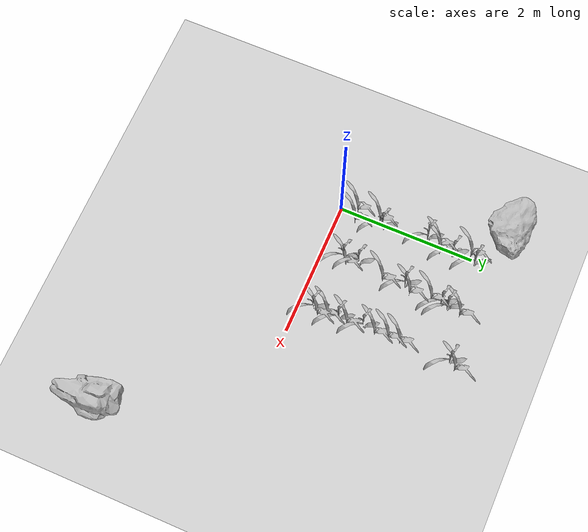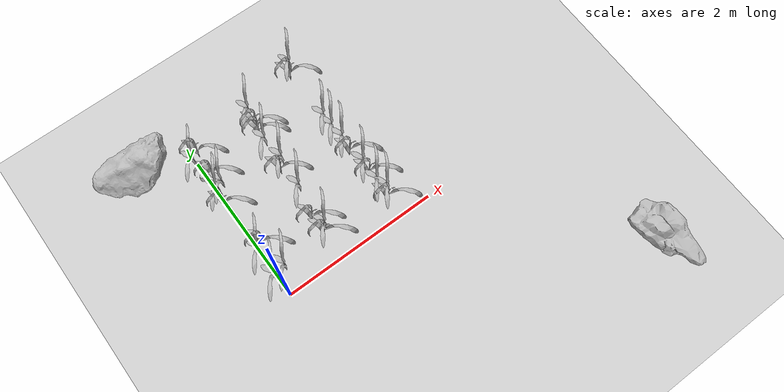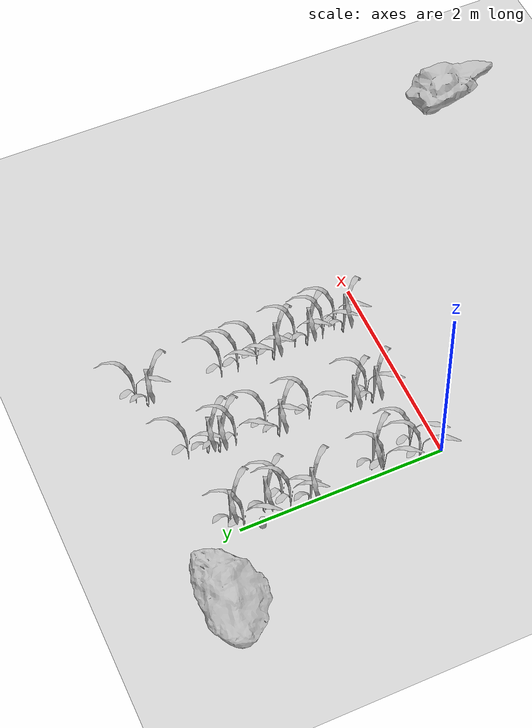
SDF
<sdf version="1.7">
 <world name="default">
  <model name="ground_plane">
   <static>1</static>
   <link name="link">
    <collision name="collision">
     <geometry><plane><normal>0 0 1</normal><size>100 100</size></plane></geometry>
     <surface>
      <contact><collide_bitmask>65535</collide_bitmask></contact>
      <friction><ode><mu>100</mu><mu2>50</mu2></ode></friction>
     </surface>
    </collision>
    <visual name="visual">
     <cast_shadows>0</cast_shadows>
     <geometry><plane><normal>0 0 1</normal><size>100 100</size></plane></geometry>
     <material>
      <script><uri>file://media/materials/scripts/gazebo.material</uri><name>Gazebo/Grey</name></script>
     </material>
    </visual>
   </link>
  </model>
  <model name="maize_01_2">
   <static>0</static>
   <pose>0.07497 2.06028 1e-06 4e-05 -2e-05 -7.9e-05</pose>
   <link name="maize_01_link">
    <inertial>
     <pose>0 0 0.01 0 -0 0</pose>
     <mass>0.3</mass>
     <inertia>
      <ixx>0.00334167</ixx>
      <ixy>0</ixy>
      <ixz>0</ixz>
      <iyy>0.00334167</iyy>
      <iyz>0</iyz>
      <izz>1.66667e-05</izz>
     </inertia>
     <pose>0 0 0.1 0 -0 0</pose>
    </inertial>
    <collision name="collision">
     <pose>0 0 0.2 0 -0 0</pose>
     <geometry><box><size>0.02 0.02 0.4</size></box></geometry>
     <surface><friction><ode><mu>10</mu><mu2>10</mu2></ode></friction></surface>
    </collision>
    <visual name="visual">
     <geometry>
      <mesh><uri>model://maize_01/meshes/maize_01.dae</uri><scale>0.683166 0.683166 0.683166</scale></mesh>
     </geometry>
    </visual>
   </link>
  </model>
  <model name="maize_02_1">
   <static>0</static>
   <pose>-0.016542 1.96877 -0 0 -2e-06 -3.7e-05</pose>
   <link name="maize_02_link">
    <inertial>
     <pose>0 0 0.01 0 -0 0</pose>
     <mass>0.3</mass>
     <inertia>
      <ixx>0.00334167</ixx>
      <ixy>0</ixy>
      <ixz>0</ixz>
      <iyy>0.00334167</iyy>
      <iyz>0</iyz>
      <izz>1.66667e-05</izz>
     </inertia>
     <pose>0 0 0.1 0 -0 0</pose>
    </inertial>
    <collision name="collision">
     <pose>0 0 0.2 0 -0 0</pose>
     <geometry><box><size>0.02 0.02 0.4</size></box></geometry>
     <surface><friction><ode><mu>10</mu><mu2>10</mu2></ode></friction></surface>
    </collision>
    <visual name="visual">
     <geometry>
      <mesh><uri>model://maize_02/meshes/maize_02.dae</uri><scale>0.683166 0.683166 0.683166</scale></mesh>
     </geometry>
    </visual>
   </link>
  </model>
  <model name="maize_02_2">
   <static>0</static>
   <pose>0.105617 1.54652 -0 1.4e-05 -1.2e-05 5.1e-05</pose>
   <link name="maize_02_link">
    <inertial>
     <pose>0 0 0.01 0 -0 0</pose>
     <mass>0.3</mass>
     <inertia>
      <ixx>0.00334167</ixx>
      <ixy>0</ixy>
      <ixz>0</ixz>
      <iyy>0.00334167</iyy>
      <iyz>0</iyz>
      <izz>1.66667e-05</izz>
     </inertia>
     <pose>0 0 0.1 0 -0 0</pose>
    </inertial>
    <collision name="collision">
     <pose>0 0 0.2 0 -0 0</pose>
     <geometry><box><size>0.02 0.02 0.4</size></box></geometry>
     <surface><friction><ode><mu>10</mu><mu2>10</mu2></ode></friction></surface>
    </collision>
    <visual name="visual">
     <geometry>
      <mesh><uri>model://maize_02/meshes/maize_02.dae</uri><scale>0.683166 0.683166 0.683166</scale></mesh>
     </geometry>
    </visual>
   </link>
  </model>
  <model name="maize_01_3">
   <static>0</static>
   <pose>-0.015504 1.32268 -0 -3e-06 -0 4.7e-05</pose>
   <link name="maize_01_link">
    <inertial>
     <pose>0 0 0.01 0 -0 0</pose>
     <mass>0.3</mass>
     <inertia>
      <ixx>0.00334167</ixx>
      <ixy>0</ixy>
      <ixz>0</ixz>
      <iyy>0.00334167</iyy>
      <iyz>0</iyz>
      <izz>1.66667e-05</izz>
     </inertia>
     <pose>0 0 0.1 0 -0 0</pose>
    </inertial>
    <collision name="collision">
     <pose>0 0 0.2 0 -0 0</pose>
     <geometry><box><size>0.02 0.02 0.4</size></box></geometry>
     <surface><friction><ode><mu>10</mu><mu2>10</mu2></ode></friction></surface>
    </collision>
    <visual name="visual">
     <geometry>
      <mesh><uri>model://maize_01/meshes/maize_01.dae</uri><scale>0.683166 0.683166 0.683166</scale></mesh>
     </geometry>
    </visual>
   </link>
  </model>
  <model name="maize_02_3">
   <static>0</static>
   <pose>0.023357 1.49971 -0 0 1e-06 -5.6e-05</pose>
   <link name="maize_02_link">
    <inertial>
     <pose>0 0 0.01 0 -0 0</pose>
     <mass>0.3</mass>
     <inertia>
      <ixx>0.00334167</ixx>
      <ixy>0</ixy>
      <ixz>0</ixz>
      <iyy>0.00334167</iyy>
      <iyz>0</iyz>
      <izz>1.66667e-05</izz>
     </inertia>
     <pose>0 0 0.1 0 -0 0</pose>
    </inertial>
    <collision name="collision">
     <pose>0 0 0.2 0 -0 0</pose>
     <geometry><box><size>0.02 0.02 0.4</size></box></geometry>
     <surface><friction><ode><mu>10</mu><mu2>10</mu2></ode></friction></surface>
    </collision>
    <visual name="visual">
     <geometry>
      <mesh><uri>model://maize_02/meshes/maize_02.dae</uri><scale>0.683166 0.683166 0.683166</scale></mesh>
     </geometry>
    </visual>
   </link>
  </model>
  <model name="maize_01_4">
   <static>0</static>
   <pose>0.072572 0.67038 -0 0 3e-06 0.000162</pose>
   <link name="maize_01_link">
    <inertial>
     <pose>0 0 0.01 0 -0 0</pose>
     <mass>0.3</mass>
     <inertia>
      <ixx>0.00334167</ixx>
      <ixy>0</ixy>
      <ixz>0</ixz>
      <iyy>0.00334167</iyy>
      <iyz>0</iyz>
      <izz>1.66667e-05</izz>
     </inertia>
     <pose>0 0 0.1 0 -0 0</pose>
    </inertial>
    <collision name="collision">
     <pose>0 0 0.2 0 -0 0</pose>
     <geometry><box><size>0.02 0.02 0.4</size></box></geometry>
     <surface><friction><ode><mu>10</mu><mu2>10</mu2></ode></friction></surface>
    </collision>
    <visual name="visual">
     <geometry>
      <mesh><uri>model://maize_01/meshes/maize_01.dae</uri><scale>0.683166 0.683166 0.683166</scale></mesh>
     </geometry>
    </visual>
   </link>
  </model>
  <model name="maize_02_4">
   <static>0</static>
   <pose>-0.001208 0.596565 -0 0 -4e-06 -0.000126</pose>
   <link name="maize_02_link">
    <inertial>
     <pose>0 0 0.01 0 -0 0</pose>
     <mass>0.3</mass>
     <inertia>
      <ixx>0.00334167</ixx>
      <ixy>0</ixy>
      <ixz>0</ixz>
      <iyy>0.00334167</iyy>
      <iyz>0</iyz>
      <izz>1.66667e-05</izz>
     </inertia>
     <pose>0 0 0.1 0 -0 0</pose>
    </inertial>
    <collision name="collision">
     <pose>0 0 0.2 0 -0 0</pose>
     <geometry><box><size>0.02 0.02 0.4</size></box></geometry>
     <surface><friction><ode><mu>10</mu><mu2>10</mu2></ode></friction></surface>
    </collision>
    <visual name="visual">
     <geometry>
      <mesh><uri>model://maize_02/meshes/maize_02.dae</uri><scale>0.683166 0.683166 0.683166</scale></mesh>
     </geometry>
    </visual>
   </link>
  </model>
  <model name="maize_02_5">
   <static>0</static>
   <pose>0.131935 0.266044 -1e-06 1e-05 -4e-06 0.00012</pose>
   <link name="maize_02_link">
    <inertial>
     <pose>0 0 0.01 0 -0 0</pose>
     <mass>0.3</mass>
     <inertia>
      <ixx>0.00334167</ixx>
      <ixy>0</ixy>
      <ixz>0</ixz>
      <iyy>0.00334167</iyy>
      <iyz>0</iyz>
      <izz>1.66667e-05</izz>
     </inertia>
     <pose>0 0 0.1 0 -0 0</pose>
    </inertial>
    <collision name="collision">
     <pose>0 0 0.2 0 -0 0</pose>
     <geometry><box><size>0.02 0.02 0.4</size></box></geometry>
     <surface><friction><ode><mu>10</mu><mu2>10</mu2></ode></friction></surface>
    </collision>
    <visual name="visual">
     <geometry>
      <mesh><uri>model://maize_02/meshes/maize_02.dae</uri><scale>0.683166 0.683166 0.683166</scale></mesh>
     </geometry>
    </visual>
   </link>
  </model>
  <model name="maize_02_6">
   <static>0</static>
   <pose>-0.029944 0.244897 -9e-06 1.6e-05 -1e-06 0.000118</pose>
   <link name="maize_02_link">
    <inertial>
     <pose>0 0 0.01 0 -0 0</pose>
     <mass>0.3</mass>
     <inertia>
      <ixx>0.00334167</ixx>
      <ixy>0</ixy>
      <ixz>0</ixz>
      <iyy>0.00334167</iyy>
      <iyz>0</iyz>
      <izz>1.66667e-05</izz>
     </inertia>
     <pose>0 0 0.1 0 -0 0</pose>
    </inertial>
    <collision name="collision">
     <pose>0 0 0.2 0 -0 0</pose>
     <geometry><box><size>0.02 0.02 0.4</size></box></geometry>
     <surface><friction><ode><mu>10</mu><mu2>10</mu2></ode></friction></surface>
    </collision>
    <visual name="visual">
     <geometry>
      <mesh><uri>model://maize_02/meshes/maize_02.dae</uri><scale>0.683166 0.683166 0.683166</scale></mesh>
     </geometry>
    </visual>
   </link>
  </model>
  <model name="maize_01_5">
   <static>0</static>
   <pose>0.06978 1.72616 -9e-06 -5e-06 -2.3e-05 9.6e-05</pose>
   <link name="maize_01_link">
    <inertial>
     <pose>0 0 0.01 0 -0 0</pose>
     <mass>0.3</mass>
     <inertia>
      <ixx>0.00334167</ixx>
      <ixy>0</ixy>
      <ixz>0</ixz>
      <iyy>0.00334167</iyy>
      <iyz>0</iyz>
      <izz>1.66667e-05</izz>
     </inertia>
     <pose>0 0 0.1 0 -0 0</pose>
    </inertial>
    <collision name="collision">
     <pose>0 0 0.2 0 -0 0</pose>
     <geometry><box><size>0.02 0.02 0.4</size></box></geometry>
     <surface><friction><ode><mu>10</mu><mu2>10</mu2></ode></friction></surface>
    </collision>
    <visual name="visual">
     <geometry>
      <mesh><uri>model://maize_01/meshes/maize_01.dae</uri><scale>0.683166 0.683166 0.683166</scale></mesh>
     </geometry>
    </visual>
   </link>
  </model>
  <model name="coke_can_0">
   <link name="link">
    <inertial>
     <mass>0.39</mass>
     <inertia>
      <ixx>0.00055575</ixx>
      <ixy>0</ixy>
      <ixz>0</ixz>
      <iyy>0.00055575</iyy>
      <iyz>0</iyz>
      <izz>0.0001755</izz>
     </inertia>
    </inertial>
    <collision name="collision">
     <pose>0 0 0.065 0 -0 0</pose>
     <geometry><box><size>0.05 0.05 0.12</size></box></geometry>
     <surface>
      <friction><ode><mu>1</mu><mu2>1</mu2></ode></friction>
      <contact><ode><kp>1e+07</kp><kd>1</kd><min_depth>0.001</min_depth><max_vel>0.1</max_vel></ode></contact>
     </surface>
    </collision>
    <visual name="visual">
     <pose>0.003937 0.004724 -0.18 0 -0 0</pose>
     <geometry><mesh><uri>model://coke_can/meshes/coke_can.dae</uri></mesh></geometry>
    </visual>
   </link>
   <pose>-0.038625 1.79987 -0.006 0 -0 0</pose>
  </model>
  <model name="Stone_01">
   <pose>-0.648652 2.32885 0.2 0 -0 0</pose>
   <static>0</static>
   <link name="Stone_01_link">
    <inertial>
     <mass>157</mass>
     <inertia>
      <ixx>0.013198</ixx>
      <ixy>7.1e-05</ixy>
      <ixz>-0.002737</ixz>
      <iyy>0.035595</iyy>
      <iyz>-0.000109</iyz>
      <izz>0.043366</izz>
     </inertia>
     <pose>0.026819 0.042579 -0.021161 0 -0 0</pose>
    </inertial>
    <collision name="collision">
     <geometry><box><size>1 0.642406 0.326631</size></box></geometry>
     <surface><friction><ode><mu>10</mu><mu2>10</mu2></ode></friction></surface>
    </collision>
    <visual name="visual">
     <geometry><mesh><uri>model://stone_01/meshes/stone_01.dae</uri><scale>1 1 1</scale></mesh></geometry>
     <material>
      <pbr>
       <metal>
        <albedo_map>model://stone_01/textures/stone_01.jpg</albedo_map>
        <ambient_occlusion_map>model://stone_01/textures/stone_01_occlusion.jpg</ambient_occlusion_map>
        <normal_map type="tangent">model://stone_01/textures/stone_01_normal.jpg</normal_map>
       </metal>
      </pbr>
     </material>
    </visual>
   </link>
  </model>
  <model name="Stone_02">
   <pose>3.91963 -2.0917 0.2 0 -0 0</pose>
   <static>0</static>
   <link name="Stone_02_link">
    <inertial>
     <mass>142</mass>
     <inertia>
      <ixx>0.003534</ixx>
      <ixy>0.000463</ixy>
      <ixz>0.000122</ixz>
      <iyy>0.001486</iyy>
      <iyz>-1.5e-05</iyz>
      <izz>0.004391</izz>
     </inertia>
     <pose>0.001732 0.073943 -0.017533 0 -0 0</pose>
    </inertial>
    <collision name="collision">
     <geometry><box><size>0.597647 1 0.299114</size></box></geometry>
     <surface><friction><ode><mu>10</mu><mu2>10</mu2></ode></friction></surface>
    </collision>
    <visual name="visual">
     <geometry><mesh><uri>model://stone_02/meshes/stone_02.dae</uri><scale>1 1 1</scale></mesh></geometry>
     <material>
      <pbr>
       <metal>
        <albedo_map>model://stone_02/textures/stone_02.jpg</albedo_map>
        <normal_map type="tangent">model://stone_02/textures/stone_02_normal.jpg</normal_map>
       </metal>
      </pbr>
     </material>
    </visual>
   </link>
  </model>
  <model name="maize_02_17">
   <static>0</static>
   <pose>0.871532 2.13424 -0 1.2e-05 -1e-05 8.5e-05</pose>
   <link name="maize_02_link">
    <inertial>
     <pose>0 0 0.01 0 -0 0</pose>
     <mass>0.3</mass>
     <inertia>
      <ixx>0.00334167</ixx>
      <ixy>0</ixy>
      <ixz>0</ixz>
      <iyy>0.00334167</iyy>
      <iyz>0</iyz>
      <izz>1.66667e-05</izz>
     </inertia>
     <pose>0 0 0.1 0 -0 0</pose>
    </inertial>
    <collision name="collision">
     <pose>0 0 0.2 0 -0 0</pose>
     <geometry><box><size>0.02 0.02 0.4</size></box></geometry>
     <surface><friction><ode><mu>10</mu><mu2>10</mu2></ode></friction></surface>
    </collision>
    <visual name="visual">
     <geometry>
      <mesh><uri>model://maize_02/meshes/maize_02.dae</uri><scale>0.683166 0.683166 0.683166</scale></mesh>
     </geometry>
    </visual>
   </link>
  </model>
  <model name="maize_01_16">
   <static>0</static>
   <pose>0.845044 1.94362 0 -0 -0 -2.3e-05</pose>
   <link name="maize_01_link">
    <inertial>
     <pose>0 0 0.01 0 -0 0</pose>
     <mass>0.3</mass>
     <inertia>
      <ixx>0.00334167</ixx>
      <ixy>0</ixy>
      <ixz>0</ixz>
      <iyy>0.00334167</iyy>
      <iyz>0</iyz>
      <izz>1.66667e-05</izz>
     </inertia>
     <pose>0 0 0.1 0 -0 0</pose>
    </inertial>
    <collision name="collision">
     <pose>0 0 0.2 0 -0 0</pose>
     <geometry><box><size>0.02 0.02 0.4</size></box></geometry>
     <surface><friction><ode><mu>10</mu><mu2>10</mu2></ode></friction></surface>
    </collision>
    <visual name="visual">
     <geometry>
      <mesh><uri>model://maize_01/meshes/maize_01.dae</uri><scale>0.683166 0.683166 0.683166</scale></mesh>
     </geometry>
    </visual>
   </link>
  </model>
  <model name="maize_01_17">
   <static>0</static>
   <pose>0.813423 1.8453 -1e-05 9e-06 -0 3.1e-05</pose>
   <link name="maize_01_link">
    <inertial>
     <pose>0 0 0.01 0 -0 0</pose>
     <mass>0.3</mass>
     <inertia>
      <ixx>0.00334167</ixx>
      <ixy>0</ixy>
      <ixz>0</ixz>
      <iyy>0.00334167</iyy>
      <iyz>0</iyz>
      <izz>1.66667e-05</izz>
     </inertia>
     <pose>0 0 0.1 0 -0 0</pose>
    </inertial>
    <collision name="collision">
     <pose>0 0 0.2 0 -0 0</pose>
     <geometry><box><size>0.02 0.02 0.4</size></box></geometry>
     <surface><friction><ode><mu>10</mu><mu2>10</mu2></ode></friction></surface>
    </collision>
    <visual name="visual">
     <geometry>
      <mesh><uri>model://maize_01/meshes/maize_01.dae</uri><scale>0.683166 0.683166 0.683166</scale></mesh>
     </geometry>
    </visual>
   </link>
  </model>
  <model name="maize_02_18">
   <static>0</static>
   <pose>0.815557 1.68966 0 -4e-06 7.2e-05 2.4e-05</pose>
   <link name="maize_02_link">
    <inertial>
     <pose>0 0 0.01 0 -0 0</pose>
     <mass>0.3</mass>
     <inertia>
      <ixx>0.00334167</ixx>
      <ixy>0</ixy>
      <ixz>0</ixz>
      <iyy>0.00334167</iyy>
      <iyz>0</iyz>
      <izz>1.66667e-05</izz>
     </inertia>
     <pose>0 0 0.1 0 -0 0</pose>
    </inertial>
    <collision name="collision">
     <pose>0 0 0.2 0 -0 0</pose>
     <geometry><box><size>0.02 0.02 0.4</size></box></geometry>
     <surface><friction><ode><mu>10</mu><mu2>10</mu2></ode></friction></surface>
    </collision>
    <visual name="visual">
     <geometry>
      <mesh><uri>model://maize_02/meshes/maize_02.dae</uri><scale>0.683166 0.683166 0.683166</scale></mesh>
     </geometry>
    </visual>
   </link>
  </model>
  <model name="maize_02_19">
   <static>0</static>
   <pose>0.845031 1.3783 -0 0 -4e-06 -9.7e-05</pose>
   <link name="maize_02_link">
    <inertial>
     <pose>0 0 0.01 0 -0 0</pose>
     <mass>0.3</mass>
     <inertia>
      <ixx>0.00334167</ixx>
      <ixy>0</ixy>
      <ixz>0</ixz>
      <iyy>0.00334167</iyy>
      <iyz>0</iyz>
      <izz>1.66667e-05</izz>
     </inertia>
     <pose>0 0 0.1 0 -0 0</pose>
    </inertial>
    <collision name="collision">
     <pose>0 0 0.2 0 -0 0</pose>
     <geometry><box><size>0.02 0.02 0.4</size></box></geometry>
     <surface><friction><ode><mu>10</mu><mu2>10</mu2></ode></friction></surface>
    </collision>
    <visual name="visual">
     <geometry>
      <mesh><uri>model://maize_02/meshes/maize_02.dae</uri><scale>0.683166 0.683166 0.683166</scale></mesh>
     </geometry>
    </visual>
   </link>
  </model>
  <model name="maize_01_18">
   <static>0</static>
   <pose>0.752388 1.28292 1e-06 -8.3e-05 -1e-06 0.000104</pose>
   <link name="maize_01_link">
    <inertial>
     <pose>0 0 0.01 0 -0 0</pose>
     <mass>0.3</mass>
     <inertia>
      <ixx>0.00334167</ixx>
      <ixy>0</ixy>
      <ixz>0</ixz>
      <iyy>0.00334167</iyy>
      <iyz>0</iyz>
      <izz>1.66667e-05</izz>
     </inertia>
     <pose>0 0 0.1 0 -0 0</pose>
    </inertial>
    <collision name="collision">
     <pose>0 0 0.2 0 -0 0</pose>
     <geometry><box><size>0.02 0.02 0.4</size></box></geometry>
     <surface><friction><ode><mu>10</mu><mu2>10</mu2></ode></friction></surface>
    </collision>
    <visual name="visual">
     <geometry>
      <mesh><uri>model://maize_01/meshes/maize_01.dae</uri><scale>0.683166 0.683166 0.683166</scale></mesh>
     </geometry>
    </visual>
   </link>
  </model>
  <model name="maize_02_20">
   <static>0</static>
   <pose>0.811056 0.959733 -0 -4e-06 -0 -9e-05</pose>
   <link name="maize_02_link">
    <inertial>
     <pose>0 0 0.01 0 -0 0</pose>
     <mass>0.3</mass>
     <inertia>
      <ixx>0.00334167</ixx>
      <ixy>0</ixy>
      <ixz>0</ixz>
      <iyy>0.00334167</iyy>
      <iyz>0</iyz>
      <izz>1.66667e-05</izz>
     </inertia>
     <pose>0 0 0.1 0 -0 0</pose>
    </inertial>
    <collision name="collision">
     <pose>0 0 0.2 0 -0 0</pose>
     <geometry><box><size>0.02 0.02 0.4</size></box></geometry>
     <surface><friction><ode><mu>10</mu><mu2>10</mu2></ode></friction></surface>
    </collision>
    <visual name="visual">
     <geometry>
      <mesh><uri>model://maize_02/meshes/maize_02.dae</uri><scale>0.683166 0.683166 0.683166</scale></mesh>
     </geometry>
    </visual>
   </link>
  </model>
  <model name="maize_02_21">
   <static>0</static>
   <pose>0.784947 0.394703 -0 -1e-05 -4e-06 8e-05</pose>
   <link name="maize_02_link">
    <inertial>
     <pose>0 0 0.01 0 -0 0</pose>
     <mass>0.3</mass>
     <inertia>
      <ixx>0.00334167</ixx>
      <ixy>0</ixy>
      <ixz>0</ixz>
      <iyy>0.00334167</iyy>
      <iyz>0</iyz>
      <izz>1.66667e-05</izz>
     </inertia>
     <pose>0 0 0.1 0 -0 0</pose>
    </inertial>
    <collision name="collision">
     <pose>0 0 0.2 0 -0 0</pose>
     <geometry><box><size>0.02 0.02 0.4</size></box></geometry>
     <surface><friction><ode><mu>10</mu><mu2>10</mu2></ode></friction></surface>
    </collision>
    <visual name="visual">
     <geometry>
      <mesh><uri>model://maize_02/meshes/maize_02.dae</uri><scale>0.683166 0.683166 0.683166</scale></mesh>
     </geometry>
    </visual>
   </link>
  </model>
  <model name="maize_01_19">
   <static>0</static>
   <pose>0.721958 0.348489 -0 -4e-06 -0 4e-06</pose>
   <link name="maize_01_link">
    <inertial>
     <pose>0 0 0.01 0 -0 0</pose>
     <mass>0.3</mass>
     <inertia>
      <ixx>0.00334167</ixx>
      <ixy>0</ixy>
      <ixz>0</ixz>
      <iyy>0.00334167</iyy>
      <iyz>0</iyz>
      <izz>1.66667e-05</izz>
     </inertia>
     <pose>0 0 0.1 0 -0 0</pose>
    </inertial>
    <collision name="collision">
     <pose>0 0 0.2 0 -0 0</pose>
     <geometry><box><size>0.02 0.02 0.4</size></box></geometry>
     <surface><friction><ode><mu>10</mu><mu2>10</mu2></ode></friction></surface>
    </collision>
    <visual name="visual">
     <geometry>
      <mesh><uri>model://maize_01/meshes/maize_01.dae</uri><scale>0.683166 0.683166 0.683166</scale></mesh>
     </geometry>
    </visual>
   </link>
  </model>
  <model name="maize_01_20">
   <static>0</static>
   <pose>0.711205 0.57024 -0 -0 2e-06 4e-06</pose>
   <link name="maize_01_link">
    <inertial>
     <pose>0 0 0.01 0 -0 0</pose>
     <mass>0.3</mass>
     <inertia>
      <ixx>0.00334167</ixx>
      <ixy>0</ixy>
      <ixz>0</ixz>
      <iyy>0.00334167</iyy>
      <iyz>0</iyz>
      <izz>1.66667e-05</izz>
     </inertia>
     <pose>0 0 0.1 0 -0 0</pose>
    </inertial>
    <collision name="collision">
     <pose>0 0 0.2 0 -0 0</pose>
     <geometry><box><size>0.02 0.02 0.4</size></box></geometry>
     <surface><friction><ode><mu>10</mu><mu2>10</mu2></ode></friction></surface>
    </collision>
    <visual name="visual">
     <geometry>
      <mesh><uri>model://maize_01/meshes/maize_01.dae</uri><scale>0.683166 0.683166 0.683166</scale></mesh>
     </geometry>
    </visual>
   </link>
  </model>
  <model name="maize_01_21">
   <static>0</static>
   <pose>1.57174 0.252303 -1e-06 -8e-06 -4e-06 2.1e-05</pose>
   <link name="maize_01_link">
    <inertial>
     <pose>0 0 0.01 0 -0 0</pose>
     <mass>0.3</mass>
     <inertia>
      <ixx>0.00334167</ixx>
      <ixy>0</ixy>
      <ixz>0</ixz>
      <iyy>0.00334167</iyy>
      <iyz>0</iyz>
      <izz>1.66667e-05</izz>
     </inertia>
     <pose>0 0 0.1 0 -0 0</pose>
    </inertial>
    <collision name="collision">
     <pose>0 0 0.2 0 -0 0</pose>
     <geometry><box><size>0.02 0.02 0.4</size></box></geometry>
     <surface><friction><ode><mu>10</mu><mu2>10</mu2></ode></friction></surface>
    </collision>
    <visual name="visual">
     <geometry>
      <mesh><uri>model://maize_01/meshes/maize_01.dae</uri><scale>0.683166 0.683166 0.683166</scale></mesh>
     </geometry>
    </visual>
   </link>
  </model>
  <model name="maize_02_22">
   <static>0</static>
   <pose>1.63323 0.324722 -0 2e-06 -0 2.3e-05</pose>
   <link name="maize_02_link">
    <inertial>
     <pose>0 0 0.01 0 -0 0</pose>
     <mass>0.3</mass>
     <inertia>
      <ixx>0.00334167</ixx>
      <ixy>0</ixy>
      <ixz>0</ixz>
      <iyy>0.00334167</iyy>
      <iyz>0</iyz>
      <izz>1.66667e-05</izz>
     </inertia>
     <pose>0 0 0.1 0 -0 0</pose>
    </inertial>
    <collision name="collision">
     <pose>0 0 0.2 0 -0 0</pose>
     <geometry><box><size>0.02 0.02 0.4</size></box></geometry>
     <surface><friction><ode><mu>10</mu><mu2>10</mu2></ode></friction></surface>
    </collision>
    <visual name="visual">
     <geometry>
      <mesh><uri>model://maize_02/meshes/maize_02.dae</uri><scale>0.683166 0.683166 0.683166</scale></mesh>
     </geometry>
    </visual>
   </link>
  </model>
  <model name="maize_02_23">
   <static>0</static>
   <pose>1.58833 0.46473 -0 -9e-06 2.2e-05 7.7e-05</pose>
   <link name="maize_02_link">
    <inertial>
     <pose>0 0 0.01 0 -0 0</pose>
     <mass>0.3</mass>
     <inertia>
      <ixx>0.00334167</ixx>
      <ixy>0</ixy>
      <ixz>0</ixz>
      <iyy>0.00334167</iyy>
      <iyz>0</iyz>
      <izz>1.66667e-05</izz>
     </inertia>
     <pose>0 0 0.1 0 -0 0</pose>
    </inertial>
    <collision name="collision">
     <pose>0 0 0.2 0 -0 0</pose>
     <geometry><box><size>0.02 0.02 0.4</size></box></geometry>
     <surface><friction><ode><mu>10</mu><mu2>10</mu2></ode></friction></surface>
    </collision>
    <visual name="visual">
     <geometry>
      <mesh><uri>model://maize_02/meshes/maize_02.dae</uri><scale>0.683166 0.683166 0.683166</scale></mesh>
     </geometry>
    </visual>
   </link>
  </model>
  <model name="maize_01_22">
   <static>0</static>
   <pose>1.57425 0.627197 0 2e-06 3.5e-05 1.4e-05</pose>
   <link name="maize_01_link">
    <inertial>
     <pose>0 0 0.01 0 -0 0</pose>
     <mass>0.3</mass>
     <inertia>
      <ixx>0.00334167</ixx>
      <ixy>0</ixy>
      <ixz>0</ixz>
      <iyy>0.00334167</iyy>
      <iyz>0</iyz>
      <izz>1.66667e-05</izz>
     </inertia>
     <pose>0 0 0.1 0 -0 0</pose>
    </inertial>
    <collision name="collision">
     <pose>0 0 0.2 0 -0 0</pose>
     <geometry><box><size>0.02 0.02 0.4</size></box></geometry>
     <surface><friction><ode><mu>10</mu><mu2>10</mu2></ode></friction></surface>
    </collision>
    <visual name="visual">
     <geometry>
      <mesh><uri>model://maize_01/meshes/maize_01.dae</uri><scale>0.683166 0.683166 0.683166</scale></mesh>
     </geometry>
    </visual>
   </link>
  </model>
  <model name="maize_02_24">
   <static>0</static>
   <pose>1.5971 0.749602 -9e-06 -7e-06 -4.9e-05 -1e-05</pose>
   <link name="maize_02_link">
    <inertial>
     <pose>0 0 0.01 0 -0 0</pose>
     <mass>0.3</mass>
     <inertia>
      <ixx>0.00334167</ixx>
      <ixy>0</ixy>
      <ixz>0</ixz>
      <iyy>0.00334167</iyy>
      <iyz>0</iyz>
      <izz>1.66667e-05</izz>
     </inertia>
     <pose>0 0 0.1 0 -0 0</pose>
    </inertial>
    <collision name="collision">
     <pose>0 0 0.2 0 -0 0</pose>
     <geometry><box><size>0.02 0.02 0.4</size></box></geometry>
     <surface><friction><ode><mu>10</mu><mu2>10</mu2></ode></friction></surface>
    </collision>
    <visual name="visual">
     <geometry>
      <mesh><uri>model://maize_02/meshes/maize_02.dae</uri><scale>0.683166 0.683166 0.683166</scale></mesh>
     </geometry>
    </visual>
   </link>
  </model>
  <model name="maize_01_23">
   <static>0</static>
   <pose>1.5479 0.982451 -0 0 -1e-06 1.5e-05</pose>
   <link name="maize_01_link">
    <inertial>
     <pose>0 0 0.01 0 -0 0</pose>
     <mass>0.3</mass>
     <inertia>
      <ixx>0.00334167</ixx>
      <ixy>0</ixy>
      <ixz>0</ixz>
      <iyy>0.00334167</iyy>
      <iyz>0</iyz>
      <izz>1.66667e-05</izz>
     </inertia>
     <pose>0 0 0.1 0 -0 0</pose>
    </inertial>
    <collision name="collision">
     <pose>0 0 0.2 0 -0 0</pose>
     <geometry><box><size>0.02 0.02 0.4</size></box></geometry>
     <surface><friction><ode><mu>10</mu><mu2>10</mu2></ode></friction></surface>
    </collision>
    <visual name="visual">
     <geometry>
      <mesh><uri>model://maize_01/meshes/maize_01.dae</uri><scale>0.683166 0.683166 0.683166</scale></mesh>
     </geometry>
    </visual>
   </link>
  </model>
  <model name="maize_02_25">
   <static>0</static>
   <pose>1.57961 1.15183 -0 4e-06 -0 5.3e-05</pose>
   <link name="maize_02_link">
    <inertial>
     <pose>0 0 0.01 0 -0 0</pose>
     <mass>0.3</mass>
     <inertia>
      <ixx>0.00334167</ixx>
      <ixy>0</ixy>
      <ixz>0</ixz>
      <iyy>0.00334167</iyy>
      <iyz>0</iyz>
      <izz>1.66667e-05</izz>
     </inertia>
     <pose>0 0 0.1 0 -0 0</pose>
    </inertial>
    <collision name="collision">
     <pose>0 0 0.2 0 -0 0</pose>
     <geometry><box><size>0.02 0.02 0.4</size></box></geometry>
     <surface><friction><ode><mu>10</mu><mu2>10</mu2></ode></friction></surface>
    </collision>
    <visual name="visual">
     <geometry>
      <mesh><uri>model://maize_02/meshes/maize_02.dae</uri><scale>0.683166 0.683166 0.683166</scale></mesh>
     </geometry>
    </visual>
   </link>
  </model>
  <model name="maize_02_26">
   <static>0</static>
   <pose>1.56519 1.34875 -0 -0 4e-06 5.6e-05</pose>
   <link name="maize_02_link">
    <inertial>
     <pose>0 0 0.01 0 -0 0</pose>
     <mass>0.3</mass>
     <inertia>
      <ixx>0.00334167</ixx>
      <ixy>0</ixy>
      <ixz>0</ixz>
      <iyy>0.00334167</iyy>
      <iyz>0</iyz>
      <izz>1.66667e-05</izz>
     </inertia>
     <pose>0 0 0.1 0 -0 0</pose>
    </inertial>
    <collision name="collision">
     <pose>0 0 0.2 0 -0 0</pose>
     <geometry><box><size>0.02 0.02 0.4</size></box></geometry>
     <surface><friction><ode><mu>10</mu><mu2>10</mu2></ode></friction></surface>
    </collision>
    <visual name="visual">
     <geometry>
      <mesh><uri>model://maize_02/meshes/maize_02.dae</uri><scale>0.683166 0.683166 0.683166</scale></mesh>
     </geometry>
    </visual>
   </link>
  </model>
  <model name="maize_02_27">
   <static>0</static>
   <pose>1.5617 1.51707 0 -4e-06 -0 6.1e-05</pose>
   <link name="maize_02_link">
    <inertial>
     <pose>0 0 0.01 0 -0 0</pose>
     <mass>0.3</mass>
     <inertia>
      <ixx>0.00334167</ixx>
      <ixy>0</ixy>
      <ixz>0</ixz>
      <iyy>0.00334167</iyy>
      <iyz>0</iyz>
      <izz>1.66667e-05</izz>
     </inertia>
     <pose>0 0 0.1 0 -0 0</pose>
    </inertial>
    <collision name="collision">
     <pose>0 0 0.2 0 -0 0</pose>
     <geometry><box><size>0.02 0.02 0.4</size></box></geometry>
     <surface><friction><ode><mu>10</mu><mu2>10</mu2></ode></friction></surface>
    </collision>
    <visual name="visual">
     <geometry>
      <mesh><uri>model://maize_02/meshes/maize_02.dae</uri><scale>0.683166 0.683166 0.683166</scale></mesh>
     </geometry>
    </visual>
   </link>
  </model>
  <model name="maize_01_24">
   <static>0</static>
   <pose>1.55313 2.25146 -0 2.5e-05 -4e-06 2.8e-05</pose>
   <link name="maize_01_link">
    <inertial>
     <pose>0 0 0.01 0 -0 0</pose>
     <mass>0.3</mass>
     <inertia>
      <ixx>0.00334167</ixx>
      <ixy>0</ixy>
      <ixz>0</ixz>
      <iyy>0.00334167</iyy>
      <iyz>0</iyz>
      <izz>1.66667e-05</izz>
     </inertia>
     <pose>0 0 0.1 0 -0 0</pose>
    </inertial>
    <collision name="collision">
     <pose>0 0 0.2 0 -0 0</pose>
     <geometry><box><size>0.02 0.02 0.4</size></box></geometry>
     <surface><friction><ode><mu>10</mu><mu2>10</mu2></ode></friction></surface>
    </collision>
    <visual name="visual">
     <geometry>
      <mesh><uri>model://maize_01/meshes/maize_01.dae</uri><scale>0.683166 0.683166 0.683166</scale></mesh>
     </geometry>
    </visual>
   </link>
  </model>
  <model name="maize_02_28">
   <static>0</static>
   <pose>1.62722 2.34663 -0 0 2e-06 4.9e-05</pose>
   <link name="maize_02_link">
    <inertial>
     <pose>0 0 0.01 0 -0 0</pose>
     <mass>0.3</mass>
     <inertia>
      <ixx>0.00334167</ixx>
      <ixy>0</ixy>
      <ixz>0</ixz>
      <iyy>0.00334167</iyy>
      <iyz>0</iyz>
      <izz>1.66667e-05</izz>
     </inertia>
     <pose>0 0 0.1 0 -0 0</pose>
    </inertial>
    <collision name="collision">
     <pose>0 0 0.2 0 -0 0</pose>
     <geometry><box><size>0.02 0.02 0.4</size></box></geometry>
     <surface><friction><ode><mu>10</mu><mu2>10</mu2></ode></friction></surface>
    </collision>
    <visual name="visual">
     <geometry>
      <mesh><uri>model://maize_02/meshes/maize_02.dae</uri><scale>0.683166 0.683166 0.683166</scale></mesh>
     </geometry>
    </visual>
   </link>
  </model>
 </world>
</sdf>
